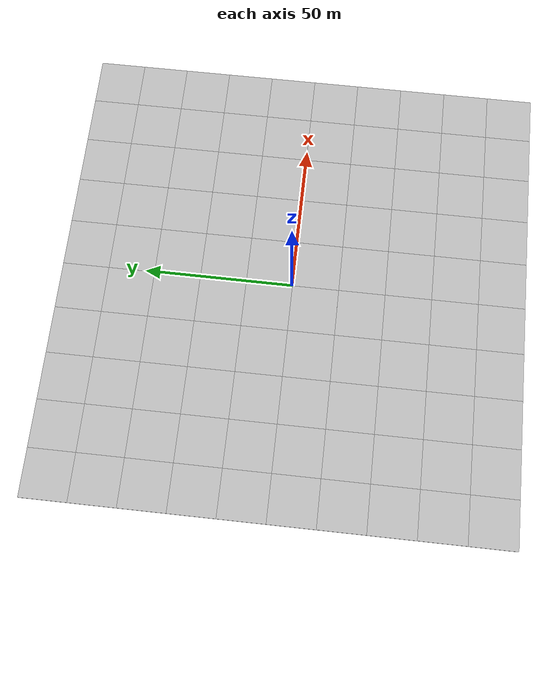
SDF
<sdf version="1.7">
 <world name="default">
  <light name="sun" type="directional">
   <pose>0 0 10 0 -0 0</pose>
   <diffuse>0.8 0.8 0.8 1</diffuse>
   <specular>0.2 0.2 0.2 1</specular>
   <attenuation>
    <range>1000</range>
    <constant>0.9</constant>
    <linear>0.01</linear>
    <quadratic>0.001</quadratic>
   </attenuation>
   <direction>-0.5 0.1 -0.9</direction>
   <spot><inner_angle>0</inner_angle><outer_angle>0</outer_angle><falloff>0</falloff></spot>
  </light>
  <plugin name="map" filename="libStaticMapPlugin.so">
   <center>45.5048271 -73.5768106</center>
   <world_size>150</world_size>
   <tile_size>300</tile_size>
   <map_type>satellite</map_type>
   <api_key>AIzaSyB8FFQrJ_bZD3Pn73aPXga1nBhhQ5AiHkA</api_key>
   <use_cache>1</use_cache>
  </plugin>
  <gravity>0 0 -9.8</gravity>
  <magnetic_field>6e-06 2.3e-05 -4.2e-05</magnetic_field>
  <atmosphere type="adiabatic"/>
  <physics type="ode">
   <max_step_size>0.001</max_step_size>
   <real_time_factor>1</real_time_factor>
   <real_time_update_rate>1000</real_time_update_rate>
  </physics>
  <scene><ambient>0.4 0.4 0.4 1</ambient><background>0.7 0.7 0.7 1</background><shadows>1</shadows></scene>
  <spherical_coordinates>
   <surface_model>EARTH_WGS84</surface_model>
   <latitude_deg>0</latitude_deg>
   <longitude_deg>0</longitude_deg>
   <elevation>0</elevation>
   <heading_deg>0</heading_deg>
  </spherical_coordinates>
  <model name="map_satellite_45.5048271_-73.5768106_150_150">
   <static>1</static>
   <link name="link">
    <collision name="collision">
     <pose>0 0 -0.5 0 -0 0</pose>
     <geometry><box><size>156.946 156.946 1</size></box></geometry>
    </collision>
    <visual name="visual0_0">
     <pose>-70.6256 70.6256 -0.5 0 -0 1.5708</pose>
     <geometry><box><size>15.6946 15.6946 1</size></box></geometry>
     <material>
      <script>
       <uri>model://map_satellite_45.5048271_-73.5768106_150_150/materials/scripts</uri>
       <uri>model://map_satellite_45.5048271_-73.5768106_150_150/materials/textures</uri>
       <name>map_satellite_45.5048271_-73.5768106_150_150/0_0</name>
      </script>
     </material>
    </visual>
    <visual name="visual0_1">
     <pose>-54.931 70.6256 -0.5 0 -0 1.5708</pose>
     <geometry><box><size>15.6946 15.6946 1</size></box></geometry>
     <material>
      <script>
       <uri>model://map_satellite_45.5048271_-73.5768106_150_150/materials/scripts</uri>
       <uri>model://map_satellite_45.5048271_-73.5768106_150_150/materials/textures</uri>
       <name>map_satellite_45.5048271_-73.5768106_150_150/0_1</name>
      </script>
     </material>
    </visual>
    <visual name="visual0_2">
     <pose>-39.2364 70.6256 -0.5 0 -0 1.5708</pose>
     <geometry><box><size>15.6946 15.6946 1</size></box></geometry>
     <material>
      <script>
       <uri>model://map_satellite_45.5048271_-73.5768106_150_150/materials/scripts</uri>
       <uri>model://map_satellite_45.5048271_-73.5768106_150_150/materials/textures</uri>
       <name>map_satellite_45.5048271_-73.5768106_150_150/0_2</name>
      </script>
     </material>
    </visual>
    <visual name="visual0_3">
     <pose>-23.5419 70.6256 -0.5 0 -0 1.5708</pose>
     <geometry><box><size>15.6946 15.6946 1</size></box></geometry>
     <material>
      <script>
       <uri>model://map_satellite_45.5048271_-73.5768106_150_150/materials/scripts</uri>
       <uri>model://map_satellite_45.5048271_-73.5768106_150_150/materials/textures</uri>
       <name>map_satellite_45.5048271_-73.5768106_150_150/0_3</name>
      </script>
     </material>
    </visual>
    <visual name="visual0_4">
     <pose>-7.84729 70.6256 -0.5 0 -0 1.5708</pose>
     <geometry><box><size>15.6946 15.6946 1</size></box></geometry>
     <material>
      <script>
       <uri>model://map_satellite_45.5048271_-73.5768106_150_150/materials/scripts</uri>
       <uri>model://map_satellite_45.5048271_-73.5768106_150_150/materials/textures</uri>
       <name>map_satellite_45.5048271_-73.5768106_150_150/0_4</name>
      </script>
     </material>
    </visual>
    <visual name="visual0_5">
     <pose>7.84729 70.6256 -0.5 0 -0 1.5708</pose>
     <geometry><box><size>15.6946 15.6946 1</size></box></geometry>
     <material>
      <script>
       <uri>model://map_satellite_45.5048271_-73.5768106_150_150/materials/scripts</uri>
       <uri>model://map_satellite_45.5048271_-73.5768106_150_150/materials/textures</uri>
       <name>map_satellite_45.5048271_-73.5768106_150_150/0_5</name>
      </script>
     </material>
    </visual>
    <visual name="visual0_6">
     <pose>23.5419 70.6256 -0.5 0 -0 1.5708</pose>
     <geometry><box><size>15.6946 15.6946 1</size></box></geometry>
     <material>
      <script>
       <uri>model://map_satellite_45.5048271_-73.5768106_150_150/materials/scripts</uri>
       <uri>model://map_satellite_45.5048271_-73.5768106_150_150/materials/textures</uri>
       <name>map_satellite_45.5048271_-73.5768106_150_150/0_6</name>
      </script>
     </material>
    </visual>
    <visual name="visual0_7">
     <pose>39.2364 70.6256 -0.5 0 -0 1.5708</pose>
     <geometry><box><size>15.6946 15.6946 1</size></box></geometry>
     <material>
      <script>
       <uri>model://map_satellite_45.5048271_-73.5768106_150_150/materials/scripts</uri>
       <uri>model://map_satellite_45.5048271_-73.5768106_150_150/materials/textures</uri>
       <name>map_satellite_45.5048271_-73.5768106_150_150/0_7</name>
      </script>
     </material>
    </visual>
    <visual name="visual0_8">
     <pose>54.931 70.6256 -0.5 0 -0 1.5708</pose>
     <geometry><box><size>15.6946 15.6946 1</size></box></geometry>
     <material>
      <script>
       <uri>model://map_satellite_45.5048271_-73.5768106_150_150/materials/scripts</uri>
       <uri>model://map_satellite_45.5048271_-73.5768106_150_150/materials/textures</uri>
       <name>map_satellite_45.5048271_-73.5768106_150_150/0_8</name>
      </script>
     </material>
    </visual>
    <visual name="visual0_9">
     <pose>70.6256 70.6256 -0.5 0 -0 1.5708</pose>
     <geometry><box><size>15.6946 15.6946 1</size></box></geometry>
     <material>
      <script>
       <uri>model://map_satellite_45.5048271_-73.5768106_150_150/materials/scripts</uri>
       <uri>model://map_satellite_45.5048271_-73.5768106_150_150/materials/textures</uri>
       <name>map_satellite_45.5048271_-73.5768106_150_150/0_9</name>
      </script>
     </material>
    </visual>
    <visual name="visual1_0">
     <pose>-70.6256 54.931 -0.5 0 -0 1.5708</pose>
     <geometry><box><size>15.6946 15.6946 1</size></box></geometry>
     <material>
      <script>
       <uri>model://map_satellite_45.5048271_-73.5768106_150_150/materials/scripts</uri>
       <uri>model://map_satellite_45.5048271_-73.5768106_150_150/materials/textures</uri>
       <name>map_satellite_45.5048271_-73.5768106_150_150/1_0</name>
      </script>
     </material>
    </visual>
    <visual name="visual1_1">
     <pose>-54.931 54.931 -0.5 0 -0 1.5708</pose>
     <geometry><box><size>15.6946 15.6946 1</size></box></geometry>
     <material>
      <script>
       <uri>model://map_satellite_45.5048271_-73.5768106_150_150/materials/scripts</uri>
       <uri>model://map_satellite_45.5048271_-73.5768106_150_150/materials/textures</uri>
       <name>map_satellite_45.5048271_-73.5768106_150_150/1_1</name>
      </script>
     </material>
    </visual>
    <visual name="visual1_2">
     <pose>-39.2364 54.931 -0.5 0 -0 1.5708</pose>
     <geometry><box><size>15.6946 15.6946 1</size></box></geometry>
     <material>
      <script>
       <uri>model://map_satellite_45.5048271_-73.5768106_150_150/materials/scripts</uri>
       <uri>model://map_satellite_45.5048271_-73.5768106_150_150/materials/textures</uri>
       <name>map_satellite_45.5048271_-73.5768106_150_150/1_2</name>
      </script>
     </material>
    </visual>
    <visual name="visual1_3">
     <pose>-23.5419 54.931 -0.5 0 -0 1.5708</pose>
     <geometry><box><size>15.6946 15.6946 1</size></box></geometry>
     <material>
      <script>
       <uri>model://map_satellite_45.5048271_-73.5768106_150_150/materials/scripts</uri>
       <uri>model://map_satellite_45.5048271_-73.5768106_150_150/materials/textures</uri>
       <name>map_satellite_45.5048271_-73.5768106_150_150/1_3</name>
      </script>
     </material>
    </visual>
    <visual name="visual1_4">
     <pose>-7.84729 54.931 -0.5 0 -0 1.5708</pose>
     <geometry><box><size>15.6946 15.6946 1</size></box></geometry>
     <material>
      <script>
       <uri>model://map_satellite_45.5048271_-73.5768106_150_150/materials/scripts</uri>
       <uri>model://map_satellite_45.5048271_-73.5768106_150_150/materials/textures</uri>
       <name>map_satellite_45.5048271_-73.5768106_150_150/1_4</name>
      </script>
     </material>
    </visual>
    <visual name="visual1_5">
     <pose>7.84729 54.931 -0.5 0 -0 1.5708</pose>
     <geometry><box><size>15.6946 15.6946 1</size></box></geometry>
     <material>
      <script>
       <uri>model://map_satellite_45.5048271_-73.5768106_150_150/materials/scripts</uri>
       <uri>model://map_satellite_45.5048271_-73.5768106_150_150/materials/textures</uri>
       <name>map_satellite_45.5048271_-73.5768106_150_150/1_5</name>
      </script>
     </material>
    </visual>
    <visual name="visual1_6">
     <pose>23.5419 54.931 -0.5 0 -0 1.5708</pose>
     <geometry><box><size>15.6946 15.6946 1</size></box></geometry>
     <material>
      <script>
       <uri>model://map_satellite_45.5048271_-73.5768106_150_150/materials/scripts</uri>
       <uri>model://map_satellite_45.5048271_-73.5768106_150_150/materials/textures</uri>
       <name>map_satellite_45.5048271_-73.5768106_150_150/1_6</name>
      </script>
     </material>
    </visual>
    <visual name="visual1_7">
     <pose>39.2364 54.931 -0.5 0 -0 1.5708</pose>
     <geometry><box><size>15.6946 15.6946 1</size></box></geometry>
     <material>
      <script>
       <uri>model://map_satellite_45.5048271_-73.5768106_150_150/materials/scripts</uri>
       <uri>model://map_satellite_45.5048271_-73.5768106_150_150/materials/textures</uri>
       <name>map_satellite_45.5048271_-73.5768106_150_150/1_7</name>
      </script>
     </material>
    </visual>
    <visual name="visual1_8">
     <pose>54.931 54.931 -0.5 0 -0 1.5708</pose>
     <geometry><box><size>15.6946 15.6946 1</size></box></geometry>
     <material>
      <script>
       <uri>model://map_satellite_45.5048271_-73.5768106_150_150/materials/scripts</uri>
       <uri>model://map_satellite_45.5048271_-73.5768106_150_150/materials/textures</uri>
       <name>map_satellite_45.5048271_-73.5768106_150_150/1_8</name>
      </script>
     </material>
    </visual>
    <visual name="visual1_9">
     <pose>70.6256 54.931 -0.5 0 -0 1.5708</pose>
     <geometry><box><size>15.6946 15.6946 1</size></box></geometry>
     <material>
      <script>
       <uri>model://map_satellite_45.5048271_-73.5768106_150_150/materials/scripts</uri>
       <uri>model://map_satellite_45.5048271_-73.5768106_150_150/materials/textures</uri>
       <name>map_satellite_45.5048271_-73.5768106_150_150/1_9</name>
      </script>
     </material>
    </visual>
    <visual name="visual2_0">
     <pose>-70.6256 39.2364 -0.5 0 -0 1.5708</pose>
     <geometry><box><size>15.6946 15.6946 1</size></box></geometry>
     <material>
      <script>
       <uri>model://map_satellite_45.5048271_-73.5768106_150_150/materials/scripts</uri>
       <uri>model://map_satellite_45.5048271_-73.5768106_150_150/materials/textures</uri>
       <name>map_satellite_45.5048271_-73.5768106_150_150/2_0</name>
      </script>
     </material>
    </visual>
    <visual name="visual2_1">
     <pose>-54.931 39.2364 -0.5 0 -0 1.5708</pose>
     <geometry><box><size>15.6946 15.6946 1</size></box></geometry>
     <material>
      <script>
       <uri>model://map_satellite_45.5048271_-73.5768106_150_150/materials/scripts</uri>
       <uri>model://map_satellite_45.5048271_-73.5768106_150_150/materials/textures</uri>
       <name>map_satellite_45.5048271_-73.5768106_150_150/2_1</name>
      </script>
     </material>
    </visual>
    <visual name="visual2_2">
     <pose>-39.2364 39.2364 -0.5 0 -0 1.5708</pose>
     <geometry><box><size>15.6946 15.6946 1</size></box></geometry>
     <material>
      <script>
       <uri>model://map_satellite_45.5048271_-73.5768106_150_150/materials/scripts</uri>
       <uri>model://map_satellite_45.5048271_-73.5768106_150_150/materials/textures</uri>
       <name>map_satellite_45.5048271_-73.5768106_150_150/2_2</name>
      </script>
     </material>
    </visual>
    <visual name="visual2_3">
     <pose>-23.5419 39.2364 -0.5 0 -0 1.5708</pose>
     <geometry><box><size>15.6946 15.6946 1</size></box></geometry>
     <material>
      <script>
       <uri>model://map_satellite_45.5048271_-73.5768106_150_150/materials/scripts</uri>
       <uri>model://map_satellite_45.5048271_-73.5768106_150_150/materials/textures</uri>
       <name>map_satellite_45.5048271_-73.5768106_150_150/2_3</name>
      </script>
     </material>
    </visual>
    <visual name="visual2_4">
     <pose>-7.84729 39.2364 -0.5 0 -0 1.5708</pose>
     <geometry><box><size>15.6946 15.6946 1</size></box></geometry>
     <material>
      <script>
       <uri>model://map_satellite_45.5048271_-73.5768106_150_150/materials/scripts</uri>
       <uri>model://map_satellite_45.5048271_-73.5768106_150_150/materials/textures</uri>
       <name>map_satellite_45.5048271_-73.5768106_150_150/2_4</name>
      </script>
     </material>
    </visual>
    <visual name="visual2_5">
     <pose>7.84729 39.2364 -0.5 0 -0 1.5708</pose>
     <geometry><box><size>15.6946 15.6946 1</size></box></geometry>
     <material>
      <script>
       <uri>model://map_satellite_45.5048271_-73.5768106_150_150/materials/scripts</uri>
       <uri>model://map_satellite_45.5048271_-73.5768106_150_150/materials/textures</uri>
       <name>map_satellite_45.5048271_-73.5768106_150_150/2_5</name>
      </script>
     </material>
    </visual>
    <visual name="visual2_6">
     <pose>23.5419 39.2364 -0.5 0 -0 1.5708</pose>
     <geometry><box><size>15.6946 15.6946 1</size></box></geometry>
     <material>
      <script>
       <uri>model://map_satellite_45.5048271_-73.5768106_150_150/materials/scripts</uri>
       <uri>model://map_satellite_45.5048271_-73.5768106_150_150/materials/textures</uri>
       <name>map_satellite_45.5048271_-73.5768106_150_150/2_6</name>
      </script>
     </material>
    </visual>
    <visual name="visual2_7">
     <pose>39.2364 39.2364 -0.5 0 -0 1.5708</pose>
     <geometry><box><size>15.6946 15.6946 1</size></box></geometry>
     <material>
      <script>
       <uri>model://map_satellite_45.5048271_-73.5768106_150_150/materials/scripts</uri>
       <uri>model://map_satellite_45.5048271_-73.5768106_150_150/materials/textures</uri>
       <name>map_satellite_45.5048271_-73.5768106_150_150/2_7</name>
      </script>
     </material>
    </visual>
    <visual name="visual2_8">
     <pose>54.931 39.2364 -0.5 0 -0 1.5708</pose>
     <geometry><box><size>15.6946 15.6946 1</size></box></geometry>
     <material>
      <script>
       <uri>model://map_satellite_45.5048271_-73.5768106_150_150/materials/scripts</uri>
       <uri>model://map_satellite_45.5048271_-73.5768106_150_150/materials/textures</uri>
       <name>map_satellite_45.5048271_-73.5768106_150_150/2_8</name>
      </script>
     </material>
    </visual>
    <visual name="visual2_9">
     <pose>70.6256 39.2364 -0.5 0 -0 1.5708</pose>
     <geometry><box><size>15.6946 15.6946 1</size></box></geometry>
     <material>
      <script>
       <uri>model://map_satellite_45.5048271_-73.5768106_150_150/materials/scripts</uri>
       <uri>model://map_satellite_45.5048271_-73.5768106_150_150/materials/textures</uri>
       <name>map_satellite_45.5048271_-73.5768106_150_150/2_9</name>
      </script>
     </material>
    </visual>
    <visual name="visual3_0">
     <pose>-70.6256 23.5419 -0.5 0 -0 1.5708</pose>
     <geometry><box><size>15.6946 15.6946 1</size></box></geometry>
     <material>
      <script>
       <uri>model://map_satellite_45.5048271_-73.5768106_150_150/materials/scripts</uri>
       <uri>model://map_satellite_45.5048271_-73.5768106_150_150/materials/textures</uri>
       <name>map_satellite_45.5048271_-73.5768106_150_150/3_0</name>
      </script>
     </material>
    </visual>
    <visual name="visual3_1">
     <pose>-54.931 23.5419 -0.5 0 -0 1.5708</pose>
     <geometry><box><size>15.6946 15.6946 1</size></box></geometry>
     <material>
      <script>
       <uri>model://map_satellite_45.5048271_-73.5768106_150_150/materials/scripts</uri>
       <uri>model://map_satellite_45.5048271_-73.5768106_150_150/materials/textures</uri>
       <name>map_satellite_45.5048271_-73.5768106_150_150/3_1</name>
      </script>
     </material>
    </visual>
    <visual name="visual3_2">
     <pose>-39.2364 23.5419 -0.5 0 -0 1.5708</pose>
     <geometry><box><size>15.6946 15.6946 1</size></box></geometry>
     <material>
      <script>
       <uri>model://map_satellite_45.5048271_-73.5768106_150_150/materials/scripts</uri>
       <uri>model://map_satellite_45.5048271_-73.5768106_150_150/materials/textures</uri>
       <name>map_satellite_45.5048271_-73.5768106_150_150/3_2</name>
      </script>
     </material>
    </visual>
    <visual name="visual3_3">
     <pose>-23.5419 23.5419 -0.5 0 -0 1.5708</pose>
     <geometry><box><size>15.6946 15.6946 1</size></box></geometry>
     <material>
      <script>
       <uri>model://map_satellite_45.5048271_-73.5768106_150_150/materials/scripts</uri>
       <uri>model://map_satellite_45.5048271_-73.5768106_150_150/materials/textures</uri>
       <name>map_satellite_45.5048271_-73.5768106_150_150/3_3</name>
      </script>
     </material>
    </visual>
    <visual name="visual3_4">
     <pose>-7.84729 23.5419 -0.5 0 -0 1.5708</pose>
     <geometry><box><size>15.6946 15.6946 1</size></box></geometry>
     <material>
      <script>
       <uri>model://map_satellite_45.5048271_-73.5768106_150_150/materials/scripts</uri>
       <uri>model://map_satellite_45.5048271_-73.5768106_150_150/materials/textures</uri>
       <name>map_satellite_45.5048271_-73.5768106_150_150/3_4</name>
      </script>
     </material>
    </visual>
    <visual name="visual3_5">
     <pose>7.84729 23.5419 -0.5 0 -0 1.5708</pose>
     <geometry><box><size>15.6946 15.6946 1</size></box></geometry>
     <material>
      <script>
       <uri>model://map_satellite_45.5048271_-73.5768106_150_150/materials/scripts</uri>
       <uri>model://map_satellite_45.5048271_-73.5768106_150_150/materials/textures</uri>
       <name>map_satellite_45.5048271_-73.5768106_150_150/3_5</name>
      </script>
     </material>
    </visual>
    <visual name="visual3_6">
     <pose>23.5419 23.5419 -0.5 0 -0 1.5708</pose>
     <geometry><box><size>15.6946 15.6946 1</size></box></geometry>
     <material>
      <script>
       <uri>model://map_satellite_45.5048271_-73.5768106_150_150/materials/scripts</uri>
       <uri>model://map_satellite_45.5048271_-73.5768106_150_150/materials/textures</uri>
       <name>map_satellite_45.5048271_-73.5768106_150_150/3_6</name>
      </script>
     </material>
    </visual>
    <visual name="visual3_7">
     <pose>39.2364 23.5419 -0.5 0 -0 1.5708</pose>
     <geometry><box><size>15.6946 15.6946 1</size></box></geometry>
     <material>
      <script>
       <uri>model://map_satellite_45.5048271_-73.5768106_150_150/materials/scripts</uri>
       <uri>model://map_satellite_45.5048271_-73.5768106_150_150/materials/textures</uri>
       <name>map_satellite_45.5048271_-73.5768106_150_150/3_7</name>
      </script>
     </material>
    </visual>
    <visual name="visual3_8">
     <pose>54.931 23.5419 -0.5 0 -0 1.5708</pose>
     <geometry><box><size>15.6946 15.6946 1</size></box></geometry>
     <material>
      <script>
       <uri>model://map_satellite_45.5048271_-73.5768106_150_150/materials/scripts</uri>
       <uri>model://map_satellite_45.5048271_-73.5768106_150_150/materials/textures</uri>
       <name>map_satellite_45.5048271_-73.5768106_150_150/3_8</name>
      </script>
     </material>
    </visual>
    <visual name="visual3_9">
     <pose>70.6256 23.5419 -0.5 0 -0 1.5708</pose>
     <geometry><box><size>15.6946 15.6946 1</size></box></geometry>
     <material>
      <script>
       <uri>model://map_satellite_45.5048271_-73.5768106_150_150/materials/scripts</uri>
       <uri>model://map_satellite_45.5048271_-73.5768106_150_150/materials/textures</uri>
       <name>map_satellite_45.5048271_-73.5768106_150_150/3_9</name>
      </script>
     </material>
    </visual>
    <visual name="visual4_0">
     <pose>-70.6256 7.84729 -0.5 0 -0 1.5708</pose>
     <geometry><box><size>15.6946 15.6946 1</size></box></geometry>
     <material>
      <script>
       <uri>model://map_satellite_45.5048271_-73.5768106_150_150/materials/scripts</uri>
       <uri>model://map_satellite_45.5048271_-73.5768106_150_150/materials/textures</uri>
       <name>map_satellite_45.5048271_-73.5768106_150_150/4_0</name>
      </script>
     </material>
    </visual>
    <visual name="visual4_1">
     <pose>-54.931 7.84729 -0.5 0 -0 1.5708</pose>
     <geometry><box><size>15.6946 15.6946 1</size></box></geometry>
     <material>
      <script>
       <uri>model://map_satellite_45.5048271_-73.5768106_150_150/materials/scripts</uri>
       <uri>model://map_satellite_45.5048271_-73.5768106_150_150/materials/textures</uri>
       <name>map_satellite_45.5048271_-73.5768106_150_150/4_1</name>
      </script>
     </material>
    </visual>
    <visual name="visual4_2">
     <pose>-39.2364 7.84729 -0.5 0 -0 1.5708</pose>
     <geometry><box><size>15.6946 15.6946 1</size></box></geometry>
     <material>
      <script>
       <uri>model://map_satellite_45.5048271_-73.5768106_150_150/materials/scripts</uri>
       <uri>model://map_satellite_45.5048271_-73.5768106_150_150/materials/textures</uri>
       <name>map_satellite_45.5048271_-73.5768106_150_150/4_2</name>
      </script>
     </material>
    </visual>
    <visual name="visual4_3">
     <pose>-23.5419 7.84729 -0.5 0 -0 1.5708</pose>
     <geometry><box><size>15.6946 15.6946 1</size></box></geometry>
     <material>
      <script>
       <uri>model://map_satellite_45.5048271_-73.5768106_150_150/materials/scripts</uri>
       <uri>model://map_satellite_45.5048271_-73.5768106_150_150/materials/textures</uri>
       <name>map_satellite_45.5048271_-73.5768106_150_150/4_3</name>
      </script>
     </material>
    </visual>
    <visual name="visual4_4">
     <pose>-7.84729 7.84729 -0.5 0 -0 1.5708</pose>
     <geometry><box><size>15.6946 15.6946 1</size></box></geometry>
     <material>
      <script>
       <uri>model://map_satellite_45.5048271_-73.5768106_150_150/materials/scripts</uri>
       <uri>model://map_satellite_45.5048271_-73.5768106_150_150/materials/textures</uri>
       <name>map_satellite_45.5048271_-73.5768106_150_150/4_4</name>
      </script>
     </material>
    </visual>
    <visual name="visual4_5">
     <pose>7.84729 7.84729 -0.5 0 -0 1.5708</pose>
     <geometry><box><size>15.6946 15.6946 1</size></box></geometry>
     <material>
      <script>
       <uri>model://map_satellite_45.5048271_-73.5768106_150_150/materials/scripts</uri>
       <uri>model://map_satellite_45.5048271_-73.5768106_150_150/materials/textures</uri>
       <name>map_satellite_45.5048271_-73.5768106_150_150/4_5</name>
      </script>
     </material>
    </visual>
    <visual name="visual4_6">
     <pose>23.5419 7.84729 -0.5 0 -0 1.5708</pose>
     <geometry><box><size>15.6946 15.6946 1</size></box></geometry>
     <material>
      <script>
       <uri>model://map_satellite_45.5048271_-73.5768106_150_150/materials/scripts</uri>
       <uri>model://map_satellite_45.5048271_-73.5768106_150_150/materials/textures</uri>
       <name>map_satellite_45.5048271_-73.5768106_150_150/4_6</name>
      </script>
     </material>
    </visual>
    <visual name="visual4_7">
     <pose>39.2364 7.84729 -0.5 0 -0 1.5708</pose>
     <geometry><box><size>15.6946 15.6946 1</size></box></geometry>
     <material>
      <script>
       <uri>model://map_satellite_45.5048271_-73.5768106_150_150/materials/scripts</uri>
       <uri>model://map_satellite_45.5048271_-73.5768106_150_150/materials/textures</uri>
       <name>map_satellite_45.5048271_-73.5768106_150_150/4_7</name>
      </script>
     </material>
    </visual>
    <visual name="visual4_8">
     <pose>54.931 7.84729 -0.5 0 -0 1.5708</pose>
     <geometry><box><size>15.6946 15.6946 1</size></box></geometry>
     <material>
      <script>
       <uri>model://map_satellite_45.5048271_-73.5768106_150_150/materials/scripts</uri>
       <uri>model://map_satellite_45.5048271_-73.5768106_150_150/materials/textures</uri>
       <name>map_satellite_45.5048271_-73.5768106_150_150/4_8</name>
      </script>
     </material>
    </visual>
    <visual name="visual4_9">
     <pose>70.6256 7.84729 -0.5 0 -0 1.5708</pose>
     <geometry><box><size>15.6946 15.6946 1</size></box></geometry>
     <material>
      <script>
       <uri>model://map_satellite_45.5048271_-73.5768106_150_150/materials/scripts</uri>
       <uri>model://map_satellite_45.5048271_-73.5768106_150_150/materials/textures</uri>
       <name>map_satellite_45.5048271_-73.5768106_150_150/4_9</name>
      </script>
     </material>
    </visual>
    <visual name="visual5_0">
     <pose>-70.6256 -7.84729 -0.5 0 -0 1.5708</pose>
     <geometry><box><size>15.6946 15.6946 1</size></box></geometry>
     <material>
      <script>
       <uri>model://map_satellite_45.5048271_-73.5768106_150_150/materials/scripts</uri>
       <uri>model://map_satellite_45.5048271_-73.5768106_150_150/materials/textures</uri>
       <name>map_satellite_45.5048271_-73.5768106_150_150/5_0</name>
      </script>
     </material>
    </visual>
    <visual name="visual5_1">
     <pose>-54.931 -7.84729 -0.5 0 -0 1.5708</pose>
     <geometry><box><size>15.6946 15.6946 1</size></box></geometry>
     <material>
      <script>
       <uri>model://map_satellite_45.5048271_-73.5768106_150_150/materials/scripts</uri>
       <uri>model://map_satellite_45.5048271_-73.5768106_150_150/materials/textures</uri>
       <name>map_satellite_45.5048271_-73.5768106_150_150/5_1</name>
      </script>
     </material>
    </visual>
    <visual name="visual5_2">
     <pose>-39.2364 -7.84729 -0.5 0 -0 1.5708</pose>
     <geometry><box><size>15.6946 15.6946 1</size></box></geometry>
     <material>
      <script>
       <uri>model://map_satellite_45.5048271_-73.5768106_150_150/materials/scripts</uri>
       <uri>model://map_satellite_45.5048271_-73.5768106_150_150/materials/textures</uri>
       <name>map_satellite_45.5048271_-73.5768106_150_150/5_2</name>
      </script>
     </material>
    </visual>
    <visual name="visual5_3">
     <pose>-23.5419 -7.84729 -0.5 0 -0 1.5708</pose>
     <geometry><box><size>15.6946 15.6946 1</size></box></geometry>
     <material>
      <script>
       <uri>model://map_satellite_45.5048271_-73.5768106_150_150/materials/scripts</uri>
       <uri>model://map_satellite_45.5048271_-73.5768106_150_150/materials/textures</uri>
       <name>map_satellite_45.5048271_-73.5768106_150_150/5_3</name>
      </script>
     </material>
    </visual>
    <visual name="visual5_4">
     <pose>-7.84729 -7.84729 -0.5 0 -0 1.5708</pose>
     <geometry><box><size>15.6946 15.6946 1</size></box></geometry>
     <material>
      <script>
       <uri>model://map_satellite_45.5048271_-73.5768106_150_150/materials/scripts</uri>
       <uri>model://map_satellite_45.5048271_-73.5768106_150_150/materials/textures</uri>
       <name>map_satellite_45.5048271_-73.5768106_150_150/5_4</name>
      </script>
     </material>
    </visual>
    <visual name="visual5_5">
     <pose>7.84729 -7.84729 -0.5 0 -0 1.5708</pose>
     <geometry><box><size>15.6946 15.6946 1</size></box></geometry>
     <material>
      <script>
       <uri>model://map_satellite_45.5048271_-73.5768106_150_150/materials/scripts</uri>
       <uri>model://map_satellite_45.5048271_-73.5768106_150_150/materials/textures</uri>
       <name>map_satellite_45.5048271_-73.5768106_150_150/5_5</name>
      </script>
     </material>
    </visual>
    <visual name="visual5_6">
     <pose>23.5419 -7.84729 -0.5 0 -0 1.5708</pose>
     <geometry><box><size>15.6946 15.6946 1</size></box></geometry>
     <material>
      <script>
       <uri>model://map_satellite_45.5048271_-73.5768106_150_150/materials/scripts</uri>
       <uri>model://map_satellite_45.5048271_-73.5768106_150_150/materials/textures</uri>
       <name>map_satellite_45.5048271_-73.5768106_150_150/5_6</name>
      </script>
     </material>
    </visual>
    <visual name="visual5_7">
     <pose>39.2364 -7.84729 -0.5 0 -0 1.5708</pose>
     <geometry><box><size>15.6946 15.6946 1</size></box></geometry>
     <material>
      <script>
       <uri>model://map_satellite_45.5048271_-73.5768106_150_150/materials/scripts</uri>
       <uri>model://map_satellite_45.5048271_-73.5768106_150_150/materials/textures</uri>
       <name>map_satellite_45.5048271_-73.5768106_150_150/5_7</name>
      </script>
     </material>
    </visual>
    <visual name="visual5_8">
     <pose>54.931 -7.84729 -0.5 0 -0 1.5708</pose>
     <geometry><box><size>15.6946 15.6946 1</size></box></geometry>
     <material>
      <script>
       <uri>model://map_satellite_45.5048271_-73.5768106_150_150/materials/scripts</uri>
       <uri>model://map_satellite_45.5048271_-73.5768106_150_150/materials/textures</uri>
       <name>map_satellite_45.5048271_-73.5768106_150_150/5_8</name>
      </script>
     </material>
    </visual>
    <visual name="visual5_9">
     <pose>70.6256 -7.84729 -0.5 0 -0 1.5708</pose>
     <geometry><box><size>15.6946 15.6946 1</size></box></geometry>
     <material>
      <script>
       <uri>model://map_satellite_45.5048271_-73.5768106_150_150/materials/scripts</uri>
       <uri>model://map_satellite_45.5048271_-73.5768106_150_150/materials/textures</uri>
       <name>map_satellite_45.5048271_-73.5768106_150_150/5_9</name>
      </script>
     </material>
    </visual>
    <visual name="visual6_0">
     <pose>-70.6256 -23.5419 -0.5 0 -0 1.5708</pose>
     <geometry><box><size>15.6946 15.6946 1</size></box></geometry>
     <material>
      <script>
       <uri>model://map_satellite_45.5048271_-73.5768106_150_150/materials/scripts</uri>
       <uri>model://map_satellite_45.5048271_-73.5768106_150_150/materials/textures</uri>
       <name>map_satellite_45.5048271_-73.5768106_150_150/6_0</name>
      </script>
     </material>
    </visual>
    <visual name="visual6_1">
     <pose>-54.931 -23.5419 -0.5 0 -0 1.5708</pose>
     <geometry><box><size>15.6946 15.6946 1</size></box></geometry>
     <material>
      <script>
       <uri>model://map_satellite_45.5048271_-73.5768106_150_150/materials/scripts</uri>
       <uri>model://map_satellite_45.5048271_-73.5768106_150_150/materials/textures</uri>
       <name>map_satellite_45.5048271_-73.5768106_150_150/6_1</name>
      </script>
     </material>
    </visual>
    <visual name="visual6_2">
     <pose>-39.2364 -23.5419 -0.5 0 -0 1.5708</pose>
     <geometry><box><size>15.6946 15.6946 1</size></box></geometry>
     <material>
      <script>
       <uri>model://map_satellite_45.5048271_-73.5768106_150_150/materials/scripts</uri>
       <uri>model://map_satellite_45.5048271_-73.5768106_150_150/materials/textures</uri>
       <name>map_satellite_45.5048271_-73.5768106_150_150/6_2</name>
      </script>
     </material>
    </visual>
    <visual name="visual6_3">
     <pose>-23.5419 -23.5419 -0.5 0 -0 1.5708</pose>
     <geometry><box><size>15.6946 15.6946 1</size></box></geometry>
     <material>
      <script>
       <uri>model://map_satellite_45.5048271_-73.5768106_150_150/materials/scripts</uri>
       <uri>model://map_satellite_45.5048271_-73.5768106_150_150/materials/textures</uri>
       <name>map_satellite_45.5048271_-73.5768106_150_150/6_3</name>
      </script>
     </material>
    </visual>
    <visual name="visual6_4">
     <pose>-7.84729 -23.5419 -0.5 0 -0 1.5708</pose>
     <geometry><box><size>15.6946 15.6946 1</size></box></geometry>
     <material>
      <script>
       <uri>model://map_satellite_45.5048271_-73.5768106_150_150/materials/scripts</uri>
       <uri>model://map_satellite_45.5048271_-73.5768106_150_150/materials/textures</uri>
       <name>map_satellite_45.5048271_-73.5768106_150_150/6_4</name>
      </script>
     </material>
    </visual>
    <visual name="visual6_5">
     <pose>7.84729 -23.5419 -0.5 0 -0 1.5708</pose>
     <geometry><box><size>15.6946 15.6946 1</size></box></geometry>
     <material>
      <script>
       <uri>model://map_satellite_45.5048271_-73.5768106_150_150/materials/scripts</uri>
       <uri>model://map_satellite_45.5048271_-73.5768106_150_150/materials/textures</uri>
       <name>map_satellite_45.5048271_-73.5768106_150_150/6_5</name>
      </script>
     </material>
    </visual>
    <visual name="visual6_6">
     <pose>23.5419 -23.5419 -0.5 0 -0 1.5708</pose>
     <geometry><box><size>15.6946 15.6946 1</size></box></geometry>
     <material>
      <script>
       <uri>model://map_satellite_45.5048271_-73.5768106_150_150/materials/scripts</uri>
       <uri>model://map_satellite_45.5048271_-73.5768106_150_150/materials/textures</uri>
       <name>map_satellite_45.5048271_-73.5768106_150_150/6_6</name>
      </script>
     </material>
    </visual>
    <visual name="visual6_7">
     <pose>39.2364 -23.5419 -0.5 0 -0 1.5708</pose>
     <geometry><box><size>15.6946 15.6946 1</size></box></geometry>
     <material>
      <script>
       <uri>model://map_satellite_45.5048271_-73.5768106_150_150/materials/scripts</uri>
       <uri>model://map_satellite_45.5048271_-73.5768106_150_150/materials/textures</uri>
       <name>map_satellite_45.5048271_-73.5768106_150_150/6_7</name>
      </script>
     </material>
    </visual>
    <visual name="visual6_8">
     <pose>54.931 -23.5419 -0.5 0 -0 1.5708</pose>
     <geometry><box><size>15.6946 15.6946 1</size></box></geometry>
     <material>
      <script>
       <uri>model://map_satellite_45.5048271_-73.5768106_150_150/materials/scripts</uri>
       <uri>model://map_satellite_45.5048271_-73.5768106_150_150/materials/textures</uri>
       <name>map_satellite_45.5048271_-73.5768106_150_150/6_8</name>
      </script>
     </material>
    </visual>
    <visual name="visual6_9">
     <pose>70.6256 -23.5419 -0.5 0 -0 1.5708</pose>
     <geometry><box><size>15.6946 15.6946 1</size></box></geometry>
     <material>
      <script>
       <uri>model://map_satellite_45.5048271_-73.5768106_150_150/materials/scripts</uri>
       <uri>model://map_satellite_45.5048271_-73.5768106_150_150/materials/textures</uri>
       <name>map_satellite_45.5048271_-73.5768106_150_150/6_9</name>
      </script>
     </material>
    </visual>
    <visual name="visual7_0">
     <pose>-70.6256 -39.2364 -0.5 0 -0 1.5708</pose>
     <geometry><box><size>15.6946 15.6946 1</size></box></geometry>
     <material>
      <script>
       <uri>model://map_satellite_45.5048271_-73.5768106_150_150/materials/scripts</uri>
       <uri>model://map_satellite_45.5048271_-73.5768106_150_150/materials/textures</uri>
       <name>map_satellite_45.5048271_-73.5768106_150_150/7_0</name>
      </script>
     </material>
    </visual>
    <visual name="visual7_1">
     <pose>-54.931 -39.2364 -0.5 0 -0 1.5708</pose>
     <geometry><box><size>15.6946 15.6946 1</size></box></geometry>
     <material>
      <script>
       <uri>model://map_satellite_45.5048271_-73.5768106_150_150/materials/scripts</uri>
       <uri>model://map_satellite_45.5048271_-73.5768106_150_150/materials/textures</uri>
       <name>map_satellite_45.5048271_-73.5768106_150_150/7_1</name>
      </script>
     </material>
    </visual>
    <visual name="visual7_2">
     <pose>-39.2364 -39.2364 -0.5 0 -0 1.5708</pose>
     <geometry><box><size>15.6946 15.6946 1</size></box></geometry>
     <material>
      <script>
       <uri>model://map_satellite_45.5048271_-73.5768106_150_150/materials/scripts</uri>
       <uri>model://map_satellite_45.5048271_-73.5768106_150_150/materials/textures</uri>
       <name>map_satellite_45.5048271_-73.5768106_150_150/7_2</name>
      </script>
     </material>
    </visual>
    <visual name="visual7_3">
     <pose>-23.5419 -39.2364 -0.5 0 -0 1.5708</pose>
     <geometry><box><size>15.6946 15.6946 1</size></box></geometry>
     <material>
      <script>
       <uri>model://map_satellite_45.5048271_-73.5768106_150_150/materials/scripts</uri>
       <uri>model://map_satellite_45.5048271_-73.5768106_150_150/materials/textures</uri>
       <name>map_satellite_45.5048271_-73.5768106_150_150/7_3</name>
      </script>
     </material>
    </visual>
    <visual name="visual7_4">
     <pose>-7.84729 -39.2364 -0.5 0 -0 1.5708</pose>
     <geometry><box><size>15.6946 15.6946 1</size></box></geometry>
     <material>
      <script>
       <uri>model://map_satellite_45.5048271_-73.5768106_150_150/materials/scripts</uri>
       <uri>model://map_satellite_45.5048271_-73.5768106_150_150/materials/textures</uri>
       <name>map_satellite_45.5048271_-73.5768106_150_150/7_4</name>
      </script>
     </material>
    </visual>
    <visual name="visual7_5">
     <pose>7.84729 -39.2364 -0.5 0 -0 1.5708</pose>
     <geometry><box><size>15.6946 15.6946 1</size></box></geometry>
     <material>
      <script>
       <uri>model://map_satellite_45.5048271_-73.5768106_150_150/materials/scripts</uri>
       <uri>model://map_satellite_45.5048271_-73.5768106_150_150/materials/textures</uri>
       <name>map_satellite_45.5048271_-73.5768106_150_150/7_5</name>
      </script>
     </material>
    </visual>
    <visual name="visual7_6">
     <pose>23.5419 -39.2364 -0.5 0 -0 1.5708</pose>
     <geometry><box><size>15.6946 15.6946 1</size></box></geometry>
     <material>
      <script>
       <uri>model://map_satellite_45.5048271_-73.5768106_150_150/materials/scripts</uri>
       <uri>model://map_satellite_45.5048271_-73.5768106_150_150/materials/textures</uri>
       <name>map_satellite_45.5048271_-73.5768106_150_150/7_6</name>
      </script>
     </material>
    </visual>
    <visual name="visual7_7">
     <pose>39.2364 -39.2364 -0.5 0 -0 1.5708</pose>
     <geometry><box><size>15.6946 15.6946 1</size></box></geometry>
     <material>
      <script>
       <uri>model://map_satellite_45.5048271_-73.5768106_150_150/materials/scripts</uri>
       <uri>model://map_satellite_45.5048271_-73.5768106_150_150/materials/textures</uri>
       <name>map_satellite_45.5048271_-73.5768106_150_150/7_7</name>
      </script>
     </material>
    </visual>
    <visual name="visual7_8">
     <pose>54.931 -39.2364 -0.5 0 -0 1.5708</pose>
     <geometry><box><size>15.6946 15.6946 1</size></box></geometry>
     <material>
      <script>
       <uri>model://map_satellite_45.5048271_-73.5768106_150_150/materials/scripts</uri>
       <uri>model://map_satellite_45.5048271_-73.5768106_150_150/materials/textures</uri>
       <name>map_satellite_45.5048271_-73.5768106_150_150/7_8</name>
      </script>
     </material>
    </visual>
    <visual name="visual7_9">
     <pose>70.6256 -39.2364 -0.5 0 -0 1.5708</pose>
     <geometry><box><size>15.6946 15.6946 1</size></box></geometry>
     <material>
      <script>
       <uri>model://map_satellite_45.5048271_-73.5768106_150_150/materials/scripts</uri>
       <uri>model://map_satellite_45.5048271_-73.5768106_150_150/materials/textures</uri>
       <name>map_satellite_45.5048271_-73.5768106_150_150/7_9</name>
      </script>
     </material>
    </visual>
    <visual name="visual8_0">
     <pose>-70.6256 -54.931 -0.5 0 -0 1.5708</pose>
     <geometry><box><size>15.6946 15.6946 1</size></box></geometry>
     <material>
      <script>
       <uri>model://map_satellite_45.5048271_-73.5768106_150_150/materials/scripts</uri>
       <uri>model://map_satellite_45.5048271_-73.5768106_150_150/materials/textures</uri>
       <name>map_satellite_45.5048271_-73.5768106_150_150/8_0</name>
      </script>
     </material>
    </visual>
    <visual name="visual8_1">
     <pose>-54.931 -54.931 -0.5 0 -0 1.5708</pose>
     <geometry><box><size>15.6946 15.6946 1</size></box></geometry>
     <material>
      <script>
       <uri>model://map_satellite_45.5048271_-73.5768106_150_150/materials/scripts</uri>
       <uri>model://map_satellite_45.5048271_-73.5768106_150_150/materials/textures</uri>
       <name>map_satellite_45.5048271_-73.5768106_150_150/8_1</name>
      </script>
     </material>
    </visual>
    <visual name="visual8_2">
     <pose>-39.2364 -54.931 -0.5 0 -0 1.5708</pose>
     <geometry><box><size>15.6946 15.6946 1</size></box></geometry>
     <material>
      <script>
       <uri>model://map_satellite_45.5048271_-73.5768106_150_150/materials/scripts</uri>
       <uri>model://map_satellite_45.5048271_-73.5768106_150_150/materials/textures</uri>
       <name>map_satellite_45.5048271_-73.5768106_150_150/8_2</name>
      </script>
     </material>
    </visual>
    <visual name="visual8_3">
     <pose>-23.5419 -54.931 -0.5 0 -0 1.5708</pose>
     <geometry><box><size>15.6946 15.6946 1</size></box></geometry>
     <material>
      <script>
       <uri>model://map_satellite_45.5048271_-73.5768106_150_150/materials/scripts</uri>
       <uri>model://map_satellite_45.5048271_-73.5768106_150_150/materials/textures</uri>
       <name>map_satellite_45.5048271_-73.5768106_150_150/8_3</name>
      </script>
     </material>
    </visual>
    <visual name="visual8_4">
     <pose>-7.84729 -54.931 -0.5 0 -0 1.5708</pose>
     <geometry><box><size>15.6946 15.6946 1</size></box></geometry>
     <material>
      <script>
       <uri>model://map_satellite_45.5048271_-73.5768106_150_150/materials/scripts</uri>
       <uri>model://map_satellite_45.5048271_-73.5768106_150_150/materials/textures</uri>
       <name>map_satellite_45.5048271_-73.5768106_150_150/8_4</name>
      </script>
     </material>
    </visual>
    <visual name="visual8_5">
     <pose>7.84729 -54.931 -0.5 0 -0 1.5708</pose>
     <geometry><box><size>15.6946 15.6946 1</size></box></geometry>
     <material>
      <script>
       <uri>model://map_satellite_45.5048271_-73.5768106_150_150/materials/scripts</uri>
       <uri>model://map_satellite_45.5048271_-73.5768106_150_150/materials/textures</uri>
       <name>map_satellite_45.5048271_-73.5768106_150_150/8_5</name>
      </script>
     </material>
    </visual>
    <visual name="visual8_6">
     <pose>23.5419 -54.931 -0.5 0 -0 1.5708</pose>
     <geometry><box><size>15.6946 15.6946 1</size></box></geometry>
     <material>
      <script>
       <uri>model://map_satellite_45.5048271_-73.5768106_150_150/materials/scripts</uri>
       <uri>model://map_satellite_45.5048271_-73.5768106_150_150/materials/textures</uri>
       <name>map_satellite_45.5048271_-73.5768106_150_150/8_6</name>
      </script>
     </material>
    </visual>
    <visual name="visual8_7">
     <pose>39.2364 -54.931 -0.5 0 -0 1.5708</pose>
     <geometry><box><size>15.6946 15.6946 1</size></box></geometry>
     <material>
      <script>
       <uri>model://map_satellite_45.5048271_-73.5768106_150_150/materials/scripts</uri>
       <uri>model://map_satellite_45.5048271_-73.5768106_150_150/materials/textures</uri>
       <name>map_satellite_45.5048271_-73.5768106_150_150/8_7</name>
      </script>
     </material>
    </visual>
    <visual name="visual8_8">
     <pose>54.931 -54.931 -0.5 0 -0 1.5708</pose>
     <geometry><box><size>15.6946 15.6946 1</size></box></geometry>
     <material>
      <script>
       <uri>model://map_satellite_45.5048271_-73.5768106_150_150/materials/scripts</uri>
       <uri>model://map_satellite_45.5048271_-73.5768106_150_150/materials/textures</uri>
       <name>map_satellite_45.5048271_-73.5768106_150_150/8_8</name>
      </script>
     </material>
    </visual>
    <visual name="visual8_9">
     <pose>70.6256 -54.931 -0.5 0 -0 1.5708</pose>
     <geometry><box><size>15.6946 15.6946 1</size></box></geometry>
     <material>
      <script>
       <uri>model://map_satellite_45.5048271_-73.5768106_150_150/materials/scripts</uri>
       <uri>model://map_satellite_45.5048271_-73.5768106_150_150/materials/textures</uri>
       <name>map_satellite_45.5048271_-73.5768106_150_150/8_9</name>
      </script>
     </material>
    </visual>
    <visual name="visual9_0">
     <pose>-70.6256 -70.6256 -0.5 0 -0 1.5708</pose>
     <geometry><box><size>15.6946 15.6946 1</size></box></geometry>
     <material>
      <script>
       <uri>model://map_satellite_45.5048271_-73.5768106_150_150/materials/scripts</uri>
       <uri>model://map_satellite_45.5048271_-73.5768106_150_150/materials/textures</uri>
       <name>map_satellite_45.5048271_-73.5768106_150_150/9_0</name>
      </script>
     </material>
    </visual>
    <visual name="visual9_1">
     <pose>-54.931 -70.6256 -0.5 0 -0 1.5708</pose>
     <geometry><box><size>15.6946 15.6946 1</size></box></geometry>
     <material>
      <script>
       <uri>model://map_satellite_45.5048271_-73.5768106_150_150/materials/scripts</uri>
       <uri>model://map_satellite_45.5048271_-73.5768106_150_150/materials/textures</uri>
       <name>map_satellite_45.5048271_-73.5768106_150_150/9_1</name>
      </script>
     </material>
    </visual>
    <visual name="visual9_2">
     <pose>-39.2364 -70.6256 -0.5 0 -0 1.5708</pose>
     <geometry><box><size>15.6946 15.6946 1</size></box></geometry>
     <material>
      <script>
       <uri>model://map_satellite_45.5048271_-73.5768106_150_150/materials/scripts</uri>
       <uri>model://map_satellite_45.5048271_-73.5768106_150_150/materials/textures</uri>
       <name>map_satellite_45.5048271_-73.5768106_150_150/9_2</name>
      </script>
     </material>
    </visual>
    <visual name="visual9_3">
     <pose>-23.5419 -70.6256 -0.5 0 -0 1.5708</pose>
     <geometry><box><size>15.6946 15.6946 1</size></box></geometry>
     <material>
      <script>
       <uri>model://map_satellite_45.5048271_-73.5768106_150_150/materials/scripts</uri>
       <uri>model://map_satellite_45.5048271_-73.5768106_150_150/materials/textures</uri>
       <name>map_satellite_45.5048271_-73.5768106_150_150/9_3</name>
      </script>
     </material>
    </visual>
    <visual name="visual9_4">
     <pose>-7.84729 -70.6256 -0.5 0 -0 1.5708</pose>
     <geometry><box><size>15.6946 15.6946 1</size></box></geometry>
     <material>
      <script>
       <uri>model://map_satellite_45.5048271_-73.5768106_150_150/materials/scripts</uri>
       <uri>model://map_satellite_45.5048271_-73.5768106_150_150/materials/textures</uri>
       <name>map_satellite_45.5048271_-73.5768106_150_150/9_4</name>
      </script>
     </material>
    </visual>
    <visual name="visual9_5">
     <pose>7.84729 -70.6256 -0.5 0 -0 1.5708</pose>
     <geometry><box><size>15.6946 15.6946 1</size></box></geometry>
     <material>
      <script>
       <uri>model://map_satellite_45.5048271_-73.5768106_150_150/materials/scripts</uri>
       <uri>model://map_satellite_45.5048271_-73.5768106_150_150/materials/textures</uri>
       <name>map_satellite_45.5048271_-73.5768106_150_150/9_5</name>
      </script>
     </material>
    </visual>
    <visual name="visual9_6">
     <pose>23.5419 -70.6256 -0.5 0 -0 1.5708</pose>
     <geometry><box><size>15.6946 15.6946 1</size></box></geometry>
     <material>
      <script>
       <uri>model://map_satellite_45.5048271_-73.5768106_150_150/materials/scripts</uri>
       <uri>model://map_satellite_45.5048271_-73.5768106_150_150/materials/textures</uri>
       <name>map_satellite_45.5048271_-73.5768106_150_150/9_6</name>
      </script>
     </material>
    </visual>
    <visual name="visual9_7">
     <pose>39.2364 -70.6256 -0.5 0 -0 1.5708</pose>
     <geometry><box><size>15.6946 15.6946 1</size></box></geometry>
     <material>
      <script>
       <uri>model://map_satellite_45.5048271_-73.5768106_150_150/materials/scripts</uri>
       <uri>model://map_satellite_45.5048271_-73.5768106_150_150/materials/textures</uri>
       <name>map_satellite_45.5048271_-73.5768106_150_150/9_7</name>
      </script>
     </material>
    </visual>
    <visual name="visual9_8">
     <pose>54.931 -70.6256 -0.5 0 -0 1.5708</pose>
     <geometry><box><size>15.6946 15.6946 1</size></box></geometry>
     <material>
      <script>
       <uri>model://map_satellite_45.5048271_-73.5768106_150_150/materials/scripts</uri>
       <uri>model://map_satellite_45.5048271_-73.5768106_150_150/materials/textures</uri>
       <name>map_satellite_45.5048271_-73.5768106_150_150/9_8</name>
      </script>
     </material>
    </visual>
    <visual name="visual9_9">
     <pose>70.6256 -70.6256 -0.5 0 -0 1.5708</pose>
     <geometry><box><size>15.6946 15.6946 1</size></box></geometry>
     <material>
      <script>
       <uri>model://map_satellite_45.5048271_-73.5768106_150_150/materials/scripts</uri>
       <uri>model://map_satellite_45.5048271_-73.5768106_150_150/materials/textures</uri>
       <name>map_satellite_45.5048271_-73.5768106_150_150/9_9</name>
      </script>
     </material>
    </visual>
   </link>
  </model>
 </world>
</sdf>
